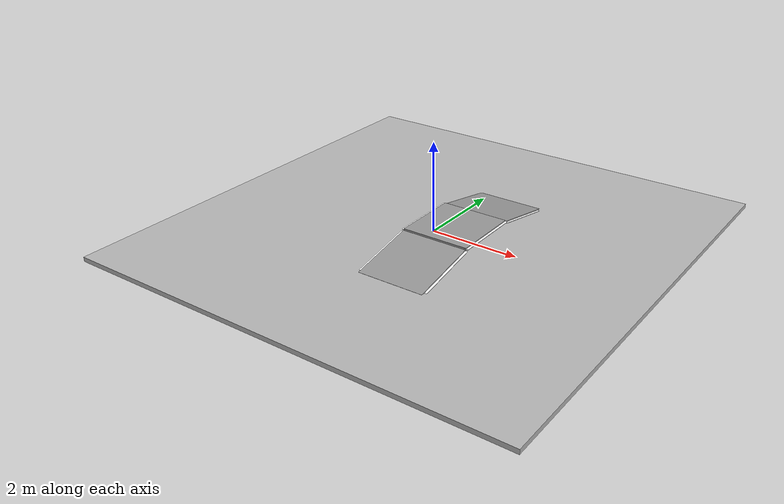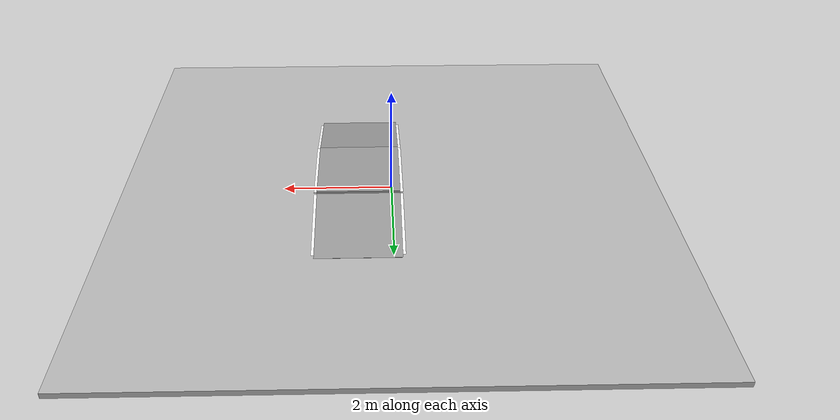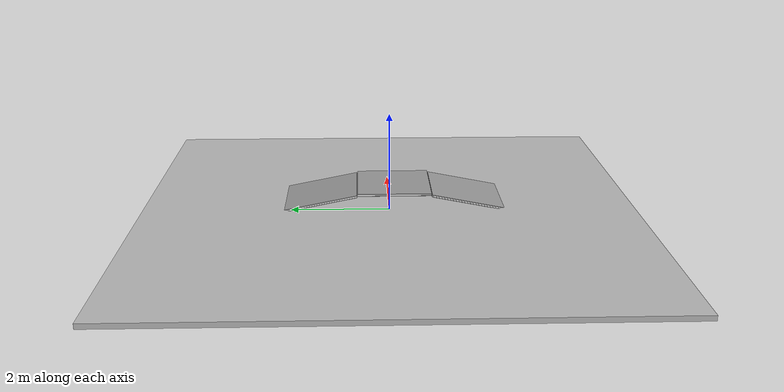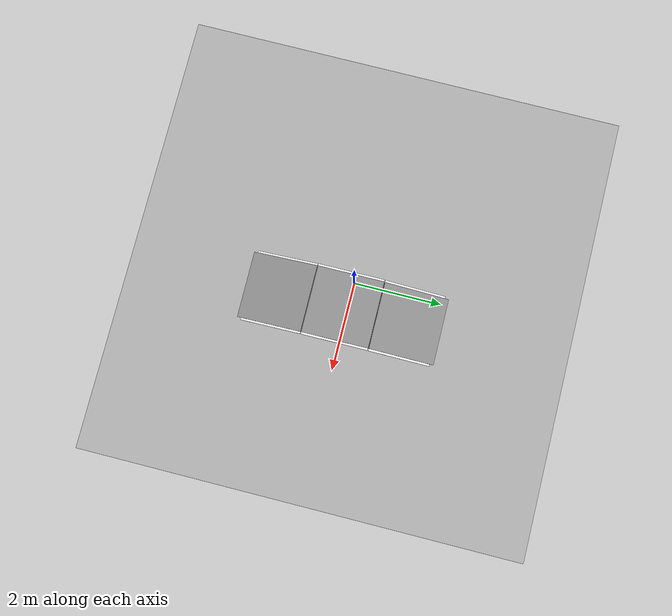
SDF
<sdf version='1.9'>
  <world name='ramp'>
    <plugin name='ignition::gazebo::systems::Physics' filename='ignition-gazebo-physics-system'/>
    <plugin name='ignition::gazebo::systems::UserCommands' filename='ignition-gazebo-user-commands-system'/>
    <plugin name='ignition::gazebo::systems::SceneBroadcaster' filename='ignition-gazebo-scene-broadcaster-system'/>
    <plugin name="ignition::gazebo::systems::Contact" filename="libignition-gazebo-contact-system.so">
</plugin>
    <physics type='ode'>
      <max_step_size>0.001</max_step_size>
      <real_time_update_rate>1000</real_time_update_rate>
      <real_time_factor>1</real_time_factor>
    </physics>
    <scene>
      <ambient>0.1 0.1 0.1 0.1</ambient>
      <background>0.8 0.8 0.8 1</background>
      <grid>true</grid>
      <shadows>true</shadows>
    </scene>
    <gui fullscreen='false'>
      <camera name='user_camera'>
        <pose>-1.8 14.4 8.6 0.0 0.545 -1.65</pose>
        <view_controller>orbit</view_controller>
      </camera>
    </gui>
    <gravity>0 0 -9.8</gravity>
    <magnetic_field>6e-06 2.3e-05 -4.2e-05</magnetic_field>
    <atmosphere type='adiabatic'/>
    <include>
      <uri>file:///home/andrew/IGVC/ros2_ws/install/littleblue_sim/share/littleblue_sim/worlds/ramp/custom_models/floor</uri>
      <name>custom_course</name>
      <pose>0 0 0 0 -0 0</pose>
    </include>
    <include>
      <uri>file:///home/andrew/IGVC/ros2_ws/install/littleblue_sim/share/littleblue_sim/models/ramp</uri>
      <name>ramp_1</name>
      <pose>0.61 -0.1 0.05 -0 -0 1.575</pose>
    </include>
    <include>
      <uri>file:///home/andrew/IGVC/ros2_ws/install/littleblue_sim/share/littleblue_sim/models/line_boundary</uri>
      <name>bound_1</name>
      <pose>-4 -4 0 0 -0 0</pose>
    </include>
    <include>
      <uri>file:///home/andrew/IGVC/ros2_ws/install/littleblue_sim/share/littleblue_sim/models/line_boundary</uri>
      <name>line_boundary_1</name>
      <pose>-0.556677 2.27014 0 0 0 -1.00249</pose>
    </include>
    <include>
      <uri>file:///home/andrew/IGVC/ros2_ws/install/littleblue_sim/share/littleblue_sim/models/line_boundary</uri>
      <name>line_boundary_2</name>
      <pose>-0.767901 4.56848 0 0 -0 1.62966</pose>
    </include>
    <include>
      <uri>file:///home/andrew/IGVC/ros2_ws/install/littleblue_sim/share/littleblue_sim/models/line_boundary</uri>
      <name>line_boundary_3</name>
      <pose>-0.692546 3.30252 0 0 0 -1.56179</pose>
    </include>
    <include>
      <uri>file:///home/andrew/IGVC/ros2_ws/install/littleblue_sim/share/littleblue_sim/models/line_boundary</uri>
      <name>line_boundary_4</name>
      <pose>2.12347 4.26732 0 0 -0 1.56252</pose>
    </include>
    <include>
      <uri>file:///home/andrew/IGVC/ros2_ws/install/littleblue_sim/share/littleblue_sim/models/line_boundary</uri>
      <name>line_boundary_5</name>
      <pose>2.15493 3.09202 0 0 -0 1.5653</pose>
    </include>
    <include>
      <uri>file:///home/andrew/IGVC/ros2_ws/install/littleblue_sim/share/littleblue_sim/models/line_boundary</uri>
      <name>line_boundary_6</name>
      <pose>2.22103 -3.068 0 0 -0 1.57989</pose>
    </include>
    <include>
      <uri>file:///home/andrew/IGVC/ros2_ws/install/littleblue_sim/share/littleblue_sim/models/line_boundary</uri>
      <name>line_boundary_7</name>
      <pose>2.20748 -4.30352 0 0 -0 1.5622</pose>
    </include>
    <include>
      <uri>file:///home/andrew/IGVC/ros2_ws/install/littleblue_sim/share/littleblue_sim/models/line_boundary</uri>
      <name>line_boundary_8</name>
      <pose>-0.787855 -3.09813 0 0 -0 1.57337</pose>
    </include>
    <include>
      <uri>file:///home/andrew/IGVC/ros2_ws/install/littleblue_sim/share/littleblue_sim/models/line_boundary</uri>
      <name>line_boundary_9</name>
      <pose>-0.787666 -4.26945 0 0 -0 1.5876</pose>
    </include>
    <include>
      <uri>file:///home/andrew/IGVC/ros2_ws/install/littleblue_sim/share/littleblue_sim/models/line_boundary</uri>
      <name>line_boundary_10</name>
      <pose>-0.558838 -2.04749 0 0 -0 0.868178</pose>
    </include>
    <include>
      <uri>file:///home/andrew/IGVC/ros2_ws/install/littleblue_sim/share/littleblue_sim/models/line_boundary</uri>
      <name>line_boundary_11</name>
      <pose>1.83199 -1.92375 0 0 0 -0.834673</pose>
    </include>
    <include>
      <uri>file:///home/andrew/IGVC/ros2_ws/install/littleblue_sim/share/littleblue_sim/models/line_boundary</uri>
      <name>line_boundary_12</name>
      <pose>1.88926 2.0135 0 0 -0 0.823667</pose>
    </include>
    <light name='sun' type='directional'>
      <pose>0 0 10 0 -0 0</pose>
      <cast_shadows>true</cast_shadows>
      <intensity>1</intensity>
      <direction>-0.5 0.1 -0.9</direction>
      <diffuse>1 1 1 1</diffuse>
      <specular>0.2 0.2 0.2 1</specular>
      <attenuation>
        <range>10</range>
        <linear>1</linear>
        <constant>1</constant>
        <quadratic>0</quadratic>
      </attenuation>
      <spot>
        <inner_angle>0</inner_angle>
        <outer_angle>0</outer_angle>
        <falloff>0</falloff>
      </spot>
    </light>
  </world>
</sdf>

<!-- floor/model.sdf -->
<sdf version="1.6">
  <model name="custom_course">
    <static>true</static>
    <link name="link">
      <collision name="collision">
        <geometry>
          <box>
            <size>10 10 0.1</size> <!-- PUT YOUR COURSE SIZE HERE IN METERS -->
          </box>
        </geometry>
      </collision>
      <visual name="visual">
        <geometry>
          <box>
            <size>10 10 0.1</size> <!-- PUT YOUR COURSE SIZE HERE IN METERS -->
          </box>
        </geometry>
        <material>
          <script>
            <uri>model://floor/materials/scripts</uri>
            <uri>model://floor/materials/textures</uri>
            <name>CustomCourse/Diffuse</name>
          </script>
        </material>
      </visual>
    </link>
  </model>
</sdf>

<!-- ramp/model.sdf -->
<sdf version="1.6">
  <model name="ramp">
    <static>true</static>

    <!-- Up slope -->
    <link name="up_slope">
      <pose>-1.5 0 0.125 0 -0.1963 0</pose>
      <collision name="collision">
        <geometry><box><size>1.5 1.5 0.05</size></box></geometry>
        <surface>
          <friction><ode><mu>1.0</mu><mu2>1.0</mu2></ode></friction>
        </surface>
      </collision>
      <visual name="visual">
        <geometry><box><size>1.5 1.5 0.05</size></box></geometry>
        <material>
          <ambient>0.5 0.5 0.5 1</ambient>
          <diffuse>0.6 0.6 0.6 1</diffuse>
        </material>
      </visual>
    </link>

    <!-- Up slope lane lines -->
    <link name="up_slope_lane_left">
      <pose>-1.5 0.75 0.125 0 -0.1963 0</pose>
      <visual name="visual">
        <geometry><box><size>1.5 0.1 0.01</size></box></geometry>
        <material>
          <ambient>1 1 1 1</ambient>
          <diffuse>1 1 1 1</diffuse>
          <emissive>1 1 1 1</emissive>
        </material>
      </visual>
    </link>
    <link name="up_slope_lane_right">
      <pose>-1.5 -0.75 0.125 0 -0.1963 0</pose>
      <visual name="visual">
        <geometry><box><size>1.5 0.1 0.01</size></box></geometry>
        <material>
          <ambient>1 1 1 1</ambient>
          <diffuse>1 1 1 1</diffuse>
          <emissive>1 1 1 1</emissive>
        </material>
      </visual>
    </link>

    <!-- Flat top -->
    <link name="flat_top">
      <pose>0 0 0.3 0 0 0</pose>
      <collision name="collision">
        <geometry><box><size>1.5 1.5 0.05</size></box></geometry>
        <surface>
          <friction><ode><mu>1.0</mu><mu2>1.0</mu2></ode></friction>
        </surface>
      </collision>
      <visual name="visual">
        <geometry><box><size>1.5 1.5 0.05</size></box></geometry>
        <material>
          <ambient>0.5 0.5 0.5 1</ambient>
          <diffuse>0.6 0.6 0.6 1</diffuse>
        </material>
      </visual>
    </link>

    <!-- Flat top lane lines -->
    <link name="flat_top_lane_left">
      <pose>0 0.75 0.3 0 0 0</pose>
      <visual name="visual">
        <geometry><box><size>1.5 0.1 0.01</size></box></geometry>
        <material>
          <ambient>1 1 1 1</ambient>
          <diffuse>1 1 1 1</diffuse>
          <emissive>1 1 1 1</emissive>
        </material>
      </visual>
    </link>
    <link name="flat_top_lane_right">
      <pose>0 -0.75 0.3 0 0 0</pose>
      <visual name="visual">
        <geometry><box><size>1.5 0.1 0.01</size></box></geometry>
        <material>
          <ambient>1 1 1 1</ambient>
          <diffuse>1 1 1 1</diffuse>
          <emissive>1 1 1 1</emissive>
        </material>
      </visual>
    </link>

    <!-- Down slope -->
    <link name="down_slope">
      <pose>1.5 0 0.125 0 0.1963 0</pose>
      <collision name="collision">
        <geometry><box><size>1.5 1.5 0.05</size></box></geometry>
        <surface>
          <friction><ode><mu>1.0</mu><mu2>1.0</mu2></ode></friction>
        </surface>
      </collision>
      <visual name="visual">
        <geometry><box><size>1.5 1.5 0.05</size></box></geometry>
        <material>
          <ambient>0.5 0.5 0.5 1</ambient>
          <diffuse>0.6 0.6 0.6 1</diffuse>
        </material>
      </visual>
    </link>

    <!-- Down slope lane lines -->
    <link name="down_slope_lane_left">
      <pose>1.5 0.75 0.125 0 0.1963 0</pose>
      <visual name="visual">
        <geometry><box><size>1.5 0.1 0.01</size></box></geometry>
        <material>
          <ambient>1 1 1 1</ambient>
          <diffuse>1 1 1 1</diffuse>
          <emissive>1 1 1 1</emissive>
        </material>
      </visual>
    </link>
    <link name="down_slope_lane_right">
      <pose>1.5 -0.75 0.125 0 0.1963 0</pose>
      <visual name="visual">
        <geometry><box><size>1.5 0.1 0.01</size></box></geometry>
        <material>
          <ambient>1 1 1 1</ambient>
          <diffuse>1 1 1 1</diffuse>
          <emissive>1 1 1 1</emissive>
        </material>
      </visual>
    </link>

  </model>
</sdf>

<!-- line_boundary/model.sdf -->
<sdf version="1.8">
  <model name="line_boundary">

    <static>true</static>

    <link name="white_line_boundary">
      <collision name="line_collision">
        <pose>0 0 0.05 0 0 0</pose>
        <geometry>
          <box><size>1 0.1 0.1</size></box>
        </geometry>
      </collision>
    </link>

  </model>
</sdf>
